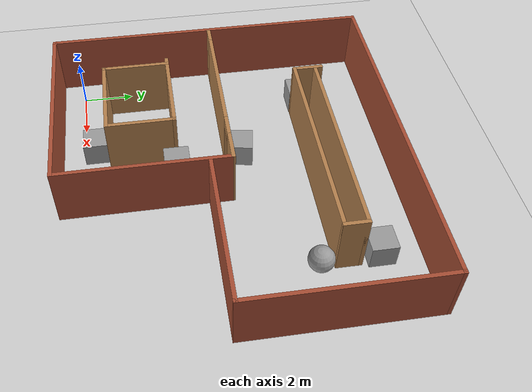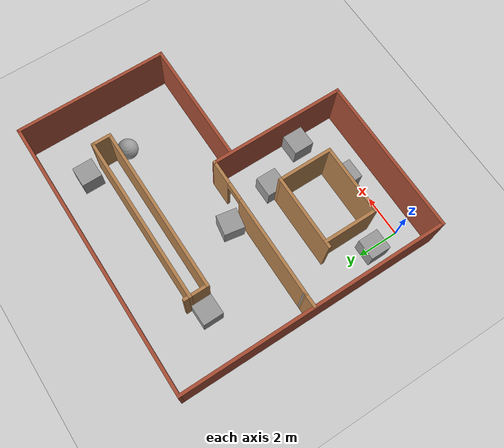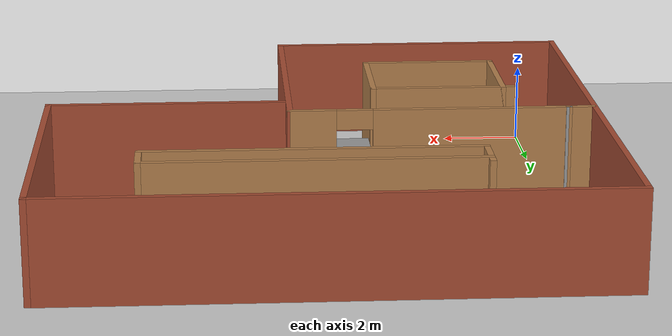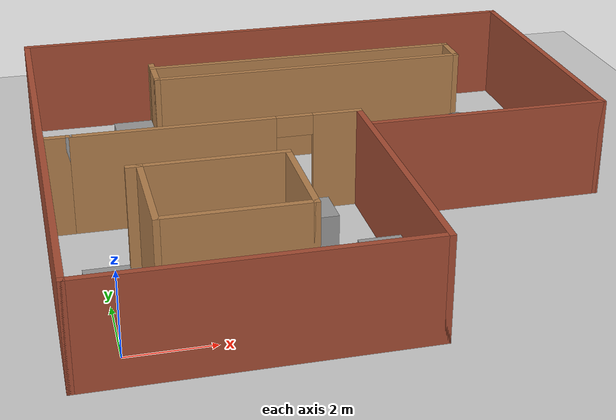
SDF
<sdf version="1.7">
 <world name="default">
  <light name="sun" type="directional">
   <pose>0 0 10 0 -0 0</pose>
   <diffuse>0.8 0.8 0.8 1</diffuse>
   <specular>0.2 0.2 0.2 1</specular>
   <attenuation>
    <range>1000</range>
    <constant>0.9</constant>
    <linear>0.01</linear>
    <quadratic>0.001</quadratic>
   </attenuation>
   <direction>-0.5 0.1 -0.9</direction>
   <spot><inner_angle>0</inner_angle><outer_angle>0</outer_angle><falloff>0</falloff></spot>
  </light>
  <model name="ground_plane">
   <static>1</static>
   <link name="link">
    <collision name="collision">
     <geometry><plane><normal>0 0 1</normal><size>100 100</size></plane></geometry>
     <surface><friction><ode><mu>100</mu><mu2>50</mu2></ode></friction></surface>
    </collision>
    <visual name="visual">
     <cast_shadows>0</cast_shadows>
     <geometry><plane><normal>0 0 1</normal><size>100 100</size></plane></geometry>
     <material>
      <script><uri>file://media/materials/scripts/gazebo.material</uri><name>Gazebo/Grey</name></script>
     </material>
    </visual>
   </link>
  </model>
  <gravity>0 0 -9.8</gravity>
  <magnetic_field>6e-06 2.3e-05 -4.2e-05</magnetic_field>
  <atmosphere type="adiabatic"/>
  <physics name="default_physics" default="0" type="ode">
   <max_step_size>0.001</max_step_size>
   <real_time_factor>1</real_time_factor>
   <real_time_update_rate>1000</real_time_update_rate>
  </physics>
  <scene><ambient>0.4 0.4 0.4 1</ambient><background>0.7 0.7 0.7 1</background><shadows>1</shadows></scene>
  <spherical_coordinates>
   <surface_model>EARTH_WGS84</surface_model>
   <latitude_deg>0</latitude_deg>
   <longitude_deg>0</longitude_deg>
   <elevation>0</elevation>
   <heading_deg>0</heading_deg>
  </spherical_coordinates>
  <model name="room1">
   <pose>5.71743 5.5728 0 0 -0 0</pose>
   <link name="Wall_0">
    <collision name="Wall_0_Collision">
     <geometry><box><size>6 0.15 2.5</size></box></geometry>
     <pose>0 0 1.25 0 -0 0</pose>
    </collision>
    <visual name="Wall_0_Visual">
     <pose>0 0 1.25 0 -0 0</pose>
     <geometry><box><size>6 0.15 2.5</size></box></geometry>
     <material>
      <script><uri>file://media/materials/scripts/gazebo.material</uri><name>Gazebo/Bricks</name></script>
      <ambient>1 1 1 1</ambient>
     </material>
     <meta><layer>0</layer></meta>
    </visual>
    <pose>3.875 -0.8 0 0 -0 0</pose>
   </link>
   <link name="Wall_1">
    <collision name="Wall_1_Collision">
     <geometry><box><size>7.5 0.15 2.5</size></box></geometry>
     <pose>0 0 1.25 0 -0 0</pose>
    </collision>
    <visual name="Wall_1_Visual">
     <pose>0 0 1.25 0 -0 0</pose>
     <geometry><box><size>7.5 0.15 2.5</size></box></geometry>
     <material>
      <script><uri>file://media/materials/scripts/gazebo.material</uri><name>Gazebo/Bricks</name></script>
      <ambient>1 1 1 1</ambient>
     </material>
     <meta><layer>0</layer></meta>
    </visual>
    <pose>6.8 2.875 0 0 -0 1.5708</pose>
   </link>
   <link name="Wall_10">
    <collision name="Wall_10_Collision">
     <geometry><box><size>1.25 0.15 2.5</size></box></geometry>
     <pose>0 0 1.25 0 -0 0</pose>
    </collision>
    <visual name="Wall_10_Visual">
     <pose>0 0 1.25 0 -0 0</pose>
     <geometry><box><size>1.25 0.15 2.5</size></box></geometry>
     <material>
      <script><uri>file://media/materials/scripts/gazebo.material</uri><name>Gazebo/Wood</name></script>
      <ambient>1 1 1 1</ambient>
     </material>
     <meta><layer>0</layer></meta>
    </visual>
    <pose>-3.67001 3.80845 0 0 0 -1.5708</pose>
   </link>
   <link name="Wall_11">
    <collision name="Wall_11_Collision">
     <geometry><box><size>8.25 0.15 2.5</size></box></geometry>
     <pose>0 0 1.25 0 -0 0</pose>
    </collision>
    <visual name="Wall_11_Visual">
     <pose>0 0 1.25 0 -0 0</pose>
     <geometry><box><size>8.25 0.15 2.5</size></box></geometry>
     <material>
      <script><uri>file://media/materials/scripts/gazebo.material</uri><name>Gazebo/Wood</name></script>
      <ambient>1 1 1 1</ambient>
     </material>
     <meta><layer>0</layer></meta>
    </visual>
    <pose>0.379989 3.25845 0 0 -0 0</pose>
   </link>
   <link name="Wall_12">
    <collision name="Wall_12_Collision">
     <geometry><box><size>1 0.15 2.5</size></box></geometry>
     <pose>0 0 1.25 0 -0 0</pose>
    </collision>
    <visual name="Wall_12_Visual">
     <pose>0 0 1.25 0 -0 0</pose>
     <geometry><box><size>1 0.15 2.5</size></box></geometry>
     <material>
      <script><uri>file://media/materials/scripts/gazebo.material</uri><name>Gazebo/Wood</name></script>
      <ambient>1 1 1 1</ambient>
     </material>
     <meta><layer>0</layer></meta>
    </visual>
    <pose>4.42999 3.68345 0 0 -0 1.5708</pose>
   </link>
   <link name="Wall_13">
    <collision name="Wall_13_Collision">
     <geometry><box><size>8.25 0.15 2.5</size></box></geometry>
     <pose>0 0 1.25 0 -0 0</pose>
    </collision>
    <visual name="Wall_13_Visual">
     <pose>0 0 1.25 0 -0 0</pose>
     <geometry><box><size>8.25 0.15 2.5</size></box></geometry>
     <material>
      <script><uri>file://media/materials/scripts/gazebo.material</uri><name>Gazebo/Wood</name></script>
      <ambient>1 1 1 1</ambient>
     </material>
     <meta><layer>0</layer></meta>
    </visual>
    <pose>0.379989 4.10845 0 0 -0 3.14159</pose>
   </link>
   <link name="Wall_16">
    <collision name="Wall_16_Collision">
     <geometry><box><size>2.75 0.15 2.5</size></box></geometry>
     <pose>0 0 1.25 0 -0 0</pose>
    </collision>
    <visual name="Wall_16_Visual">
     <pose>0 0 1.25 0 -0 0</pose>
     <geometry><box><size>2.75 0.15 2.5</size></box></geometry>
     <material>
      <script><uri>file://media/materials/scripts/gazebo.material</uri><name>Gazebo/Wood</name></script>
      <ambient>1 1 1 1</ambient>
     </material>
     <meta><layer>0</layer></meta>
    </visual>
    <pose>-4.77196 -3.2131 0 0 0 -1.5708</pose>
   </link>
   <link name="Wall_17">
    <collision name="Wall_17_Collision">
     <geometry><box><size>3.5 0.15 2.5</size></box></geometry>
     <pose>0 0 1.25 0 -0 0</pose>
    </collision>
    <visual name="Wall_17_Visual">
     <pose>0 0 1.25 0 -0 0</pose>
     <geometry><box><size>3.5 0.15 2.5</size></box></geometry>
     <material>
      <script><uri>file://media/materials/scripts/gazebo.material</uri><name>Gazebo/Wood</name></script>
      <ambient>1 1 1 1</ambient>
     </material>
     <meta><layer>0</layer></meta>
    </visual>
    <pose>-3.09696 -4.5131 0 0 -0 0</pose>
   </link>
   <link name="Wall_18">
    <collision name="Wall_18_Collision">
     <geometry><box><size>2.75 0.15 2.5</size></box></geometry>
     <pose>0 0 1.25 0 -0 0</pose>
    </collision>
    <visual name="Wall_18_Visual">
     <pose>0 0 1.25 0 -0 0</pose>
     <geometry><box><size>2.75 0.15 2.5</size></box></geometry>
     <material>
      <script><uri>file://media/materials/scripts/gazebo.material</uri><name>Gazebo/Wood</name></script>
      <ambient>1 1 1 1</ambient>
     </material>
     <meta><layer>0</layer></meta>
    </visual>
    <pose>-1.42196 -3.2131 0 0 -0 1.5708</pose>
   </link>
   <link name="Wall_19">
    <collision name="Wall_19_Collision">
     <geometry><box><size>3.75 0.15 2.5</size></box></geometry>
     <pose>0 0 1.25 0 -0 0</pose>
    </collision>
    <visual name="Wall_19_Visual">
     <pose>0 0 1.25 0 -0 0</pose>
     <geometry><box><size>3.75 0.15 2.5</size></box></geometry>
     <material>
      <script><uri>file://media/materials/scripts/gazebo.material</uri><name>Gazebo/Wood</name></script>
      <ambient>1 1 1 1</ambient>
     </material>
     <meta><layer>0</layer></meta>
    </visual>
    <pose>-3.22196 -1.9131 0 0 -0 3.14159</pose>
   </link>
   <link name="Wall_2">
    <collision name="Wall_2_Collision">
     <geometry><box><size>13.75 0.15 2.5</size></box></geometry>
     <pose>0 0 1.25 0 -0 0</pose>
    </collision>
    <visual name="Wall_2_Visual">
     <pose>0 0 1.25 0 -0 0</pose>
     <geometry><box><size>13.75 0.15 2.5</size></box></geometry>
     <material>
      <script><uri>file://media/materials/scripts/gazebo.material</uri><name>Gazebo/Bricks</name></script>
      <ambient>1 1 1 1</ambient>
     </material>
     <meta><layer>0</layer></meta>
    </visual>
    <pose>0 6.55 0 0 -0 3.14159</pose>
   </link>
   <link name="Wall_3">
    <collision name="Wall_3_Collision">
     <geometry><box><size>13.25 0.15 2.5</size></box></geometry>
     <pose>0 0 1.25 0 -0 0</pose>
    </collision>
    <visual name="Wall_3_Visual">
     <pose>0 0 1.25 0 -0 0</pose>
     <geometry><box><size>13.25 0.15 2.5</size></box></geometry>
     <material>
      <script><uri>file://media/materials/scripts/gazebo.material</uri><name>Gazebo/Bricks</name></script>
      <ambient>1 1 1 1</ambient>
     </material>
     <meta><layer>0</layer></meta>
    </visual>
    <pose>-6.8 0 0 0 0 -1.5708</pose>
   </link>
   <link name="Wall_4">
    <collision name="Wall_4_Collision">
     <geometry><box><size>7.75 0.15 2.5</size></box></geometry>
     <pose>0 0 1.25 0 -0 0</pose>
    </collision>
    <visual name="Wall_4_Visual">
     <pose>0 0 1.25 0 -0 0</pose>
     <geometry><box><size>7.75 0.15 2.5</size></box></geometry>
     <material>
      <script><uri>file://media/materials/scripts/gazebo.material</uri><name>Gazebo/Bricks</name></script>
      <ambient>1 1 1 1</ambient>
     </material>
     <meta><layer>0</layer></meta>
    </visual>
    <pose>-3 -6.55 0 0 -0 0</pose>
   </link>
   <link name="Wall_5">
    <collision name="Wall_5_Collision">
     <geometry><box><size>6.75 0.15 2.5</size></box></geometry>
     <pose>0 0 1.25 0 -0 0</pose>
    </collision>
    <visual name="Wall_5_Visual">
     <pose>0 0 1.25 0 -0 0</pose>
     <geometry><box><size>6.75 0.15 2.5</size></box></geometry>
     <material>
      <script><uri>file://media/materials/scripts/gazebo.material</uri><name>Gazebo/Bricks</name></script>
      <ambient>1 1 1 1</ambient>
     </material>
     <meta><layer>0</layer></meta>
    </visual>
    <pose>0.8 -3.25 0 0 -0 1.5708</pose>
   </link>
   <link name="Wall_6">
    <pose>-2.67763 0.061278 0 0 -0 3.13835</pose>
    <visual name="Wall_6_Visual_0">
     <pose>-2.93627 0 1.25 0 -0 0</pose>
     <geometry><box><size>1.23276 0.15 2.5</size></box></geometry>
     <material>
      <script><uri>file://media/materials/scripts/gazebo.material</uri><name>Gazebo/Wood</name></script>
      <ambient>1 1 1 1</ambient>
     </material>
     <meta><layer>0</layer></meta>
    </visual>
    <collision name="Wall_6_Collision_0">
     <geometry><box><size>1.23276 0.15 2.5</size></box></geometry>
     <pose>-2.93627 0 1.25 0 -0 0</pose>
    </collision>
    <visual name="Wall_6_Visual_1">
     <pose>1.06638 0 1.25 0 -0 0</pose>
     <geometry><box><size>4.97254 0.15 2.5</size></box></geometry>
     <material>
      <script><uri>file://media/materials/scripts/gazebo.material</uri><name>Gazebo/Wood</name></script>
      <ambient>1 1 1 1</ambient>
     </material>
     <meta><layer>0</layer></meta>
    </visual>
    <collision name="Wall_6_Collision_1">
     <geometry><box><size>4.97254 0.15 2.5</size></box></geometry>
     <pose>1.06638 0 1.25 0 -0 0</pose>
    </collision>
    <visual name="Wall_6_Visual_2">
     <pose>-1.86989 0 2.25 0 -0 0</pose>
     <geometry><box><size>0.9 0.15 0.5</size></box></geometry>
     <material>
      <script><uri>file://media/materials/scripts/gazebo.material</uri><name>Gazebo/Wood</name></script>
      <ambient>1 1 1 1</ambient>
     </material>
     <meta><layer>0</layer></meta>
    </visual>
    <collision name="Wall_6_Collision_2">
     <geometry><box><size>0.9 0.15 0.5</size></box></geometry>
     <pose>-1.86989 0 2.25 0 -0 0</pose>
    </collision>
   </link>
   <link name="Wall_7">
    <collision name="Wall_7_Collision">
     <geometry><box><size>0.15 0.15 2.5</size></box></geometry>
     <pose>0 0 1.25 0 -0 0</pose>
    </collision>
    <visual name="Wall_7_Visual">
     <pose>0 0 1.25 0 -0 0</pose>
     <geometry><box><size>0.15 0.15 2.5</size></box></geometry>
     <material>
      <script><uri>file://media/materials/scripts/gazebo.material</uri><name>Gazebo/Grey</name></script>
      <ambient>1 1 1 1</ambient>
     </material>
     <meta><layer>0</layer></meta>
    </visual>
    <pose>-6.15527 0.072556 0 0 -0 0</pose>
   </link>
   <link name="Wall_8">
    <collision name="Wall_8_Collision">
     <geometry><box><size>0.75 0.15 2.5</size></box></geometry>
     <pose>0 0 1.25 0 -0 0</pose>
    </collision>
    <visual name="Wall_8_Visual">
     <pose>0 0 1.25 0 -0 0</pose>
     <geometry><box><size>0.75 0.15 2.5</size></box></geometry>
     <material>
      <script><uri>file://media/materials/scripts/gazebo.material</uri><name>Gazebo/Wood</name></script>
      <ambient>1 1 1 1</ambient>
     </material>
     <meta><layer>0</layer></meta>
    </visual>
    <pose>-6.45151 0.072556 0 0 -0 3.14159</pose>
   </link>
   <static>1</static>
  </model>
  <model name="unit_box">
   <pose>-0.046518 1.46955 0.499995 1e-05 -0 0</pose>
   <link name="link">
    <inertial>
     <mass>1</mass>
     <inertia>
      <ixx>0.166667</ixx>
      <ixy>0</ixy>
      <ixz>0</ixz>
      <iyy>0.166667</iyy>
      <iyz>0</iyz>
      <izz>0.166667</izz>
     </inertia>
    </inertial>
    <collision name="collision"><geometry><box><size>1 1 1</size></box></geometry></collision>
    <visual name="visual">
     <geometry><box><size>1 1 1</size></box></geometry>
     <material>
      <script><name>Gazebo/Grey</name><uri>file://media/materials/scripts/gazebo.material</uri></script>
     </material>
    </visual>
   </link>
  </model>
  <model name="unit_box_0">
   <pose>3.37152 0.484697 0.5 0 -0 1e-06</pose>
   <link name="link">
    <inertial>
     <mass>1</mass>
     <inertia>
      <ixx>0.166667</ixx>
      <ixy>0</ixy>
      <ixz>0</ixz>
      <iyy>0.166667</iyy>
      <iyz>0</iyz>
      <izz>0.166667</izz>
     </inertia>
    </inertial>
    <collision name="collision"><geometry><box><size>1 1 1</size></box></geometry></collision>
    <visual name="visual">
     <geometry><box><size>1 1 1</size></box></geometry>
     <material>
      <script><name>Gazebo/Grey</name><uri>file://media/materials/scripts/gazebo.material</uri></script>
     </material>
    </visual>
   </link>
  </model>
  <model name="unit_box_1">
   <pose>5.94243 1.4091 0.5 0 -0 0</pose>
   <link name="link">
    <inertial>
     <mass>1</mass>
     <inertia>
      <ixx>0.166667</ixx>
      <ixy>0</ixy>
      <ixz>0</ixz>
      <iyy>0.166667</iyy>
      <iyz>0</iyz>
      <izz>0.166667</izz>
     </inertia>
    </inertial>
    <collision name="collision"><geometry><box><size>1 1 1</size></box></geometry></collision>
    <visual name="visual">
     <geometry><box><size>1 1 1</size></box></geometry>
     <material>
      <script><name>Gazebo/Grey</name><uri>file://media/materials/scripts/gazebo.material</uri></script>
     </material>
    </visual>
   </link>
  </model>
  <model name="unit_box_2">
   <pose>4.28211 6.24264 0.499999 -2e-06 -0 -0.168175</pose>
   <link name="link">
    <inertial>
     <mass>1</mass>
     <inertia>
      <ixx>0.166667</ixx>
      <ixy>0</ixy>
      <ixz>0</ixz>
      <iyy>0.166667</iyy>
      <iyz>0</iyz>
      <izz>0.166667</izz>
     </inertia>
    </inertial>
    <collision name="collision"><geometry><box><size>1 1 1</size></box></geometry></collision>
    <visual name="visual">
     <geometry><box><size>1 1 1</size></box></geometry>
     <material>
      <script><name>Gazebo/Grey</name><uri>file://media/materials/scripts/gazebo.material</uri></script>
     </material>
    </visual>
   </link>
  </model>
  <model name="unit_box_3">
   <pose>1.46738 9.23653 0.499995 0 -1e-05 0.007137</pose>
   <link name="link">
    <inertial>
     <mass>1</mass>
     <inertia>
      <ixx>0.166667</ixx>
      <ixy>0</ixy>
      <ixz>0</ixz>
      <iyy>0.166667</iyy>
      <iyz>0</iyz>
      <izz>0.166667</izz>
     </inertia>
    </inertial>
    <collision name="collision"><geometry><box><size>1 1 1</size></box></geometry></collision>
    <visual name="visual">
     <geometry><box><size>1 1 1</size></box></geometry>
     <material>
      <script><name>Gazebo/Grey</name><uri>file://media/materials/scripts/gazebo.material</uri></script>
     </material>
    </visual>
   </link>
  </model>
  <model name="unit_box_4">
   <pose>4.87047 3.62289 0.5 0 -0 0</pose>
   <link name="link">
    <inertial>
     <mass>1</mass>
     <inertia>
      <ixx>0.166667</ixx>
      <ixy>0</ixy>
      <ixz>0</ixz>
      <iyy>0.166667</iyy>
      <iyz>0</iyz>
      <izz>0.166667</izz>
     </inertia>
    </inertial>
    <collision name="collision"><geometry><box><size>1 1 1</size></box></geometry></collision>
    <visual name="visual">
     <geometry><box><size>1 1 1</size></box></geometry>
     <material>
      <script><name>Gazebo/Grey</name><uri>file://media/materials/scripts/gazebo.material</uri></script>
     </material>
    </visual>
   </link>
  </model>
  <model name="unit_sphere">
   <pose>10.0843 8.2484 0.5 0.036138 1e-06 0</pose>
   <link name="link">
    <inertial>
     <mass>1</mass>
     <inertia><ixx>0.1</ixx><ixy>0</ixy><ixz>0</ixz><iyy>0.1</iyy><iyz>0</iyz><izz>0.1</izz></inertia>
    </inertial>
    <collision name="collision"><geometry><sphere><radius>0.5</radius></sphere></geometry></collision>
    <visual name="visual">
     <geometry><sphere><radius>0.5</radius></sphere></geometry>
     <material>
      <script><name>Gazebo/Grey</name><uri>file://media/materials/scripts/gazebo.material</uri></script>
     </material>
    </visual>
   </link>
  </model>
  <model name="unit_box_5">
   <pose>9.85281 10.4641 0.5 0 -0 0</pose>
   <link name="link">
    <inertial>
     <mass>1</mass>
     <inertia>
      <ixx>0.166667</ixx>
      <ixy>0</ixy>
      <ixz>0</ixz>
      <iyy>0.166667</iyy>
      <iyz>0</iyz>
      <izz>0.166667</izz>
     </inertia>
    </inertial>
    <collision name="collision"><geometry><box><size>1 1 1</size></box></geometry></collision>
    <visual name="visual">
     <geometry><box><size>1 1 1</size></box></geometry>
     <material>
      <script><name>Gazebo/Grey</name><uri>file://media/materials/scripts/gazebo.material</uri></script>
     </material>
    </visual>
   </link>
  </model>
 </world>
</sdf>
